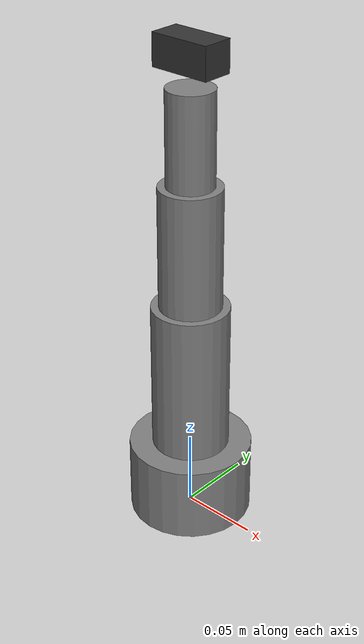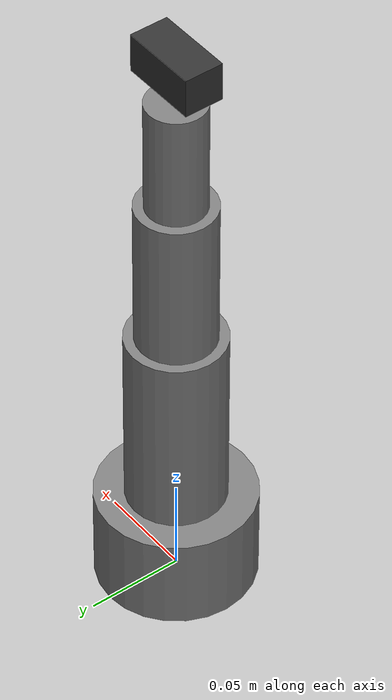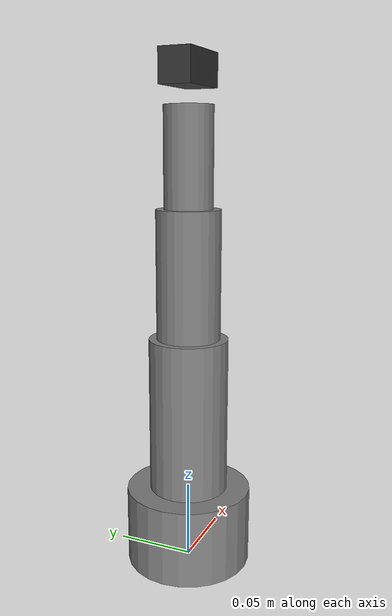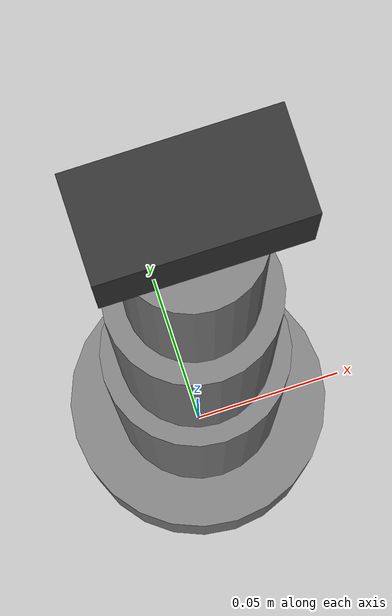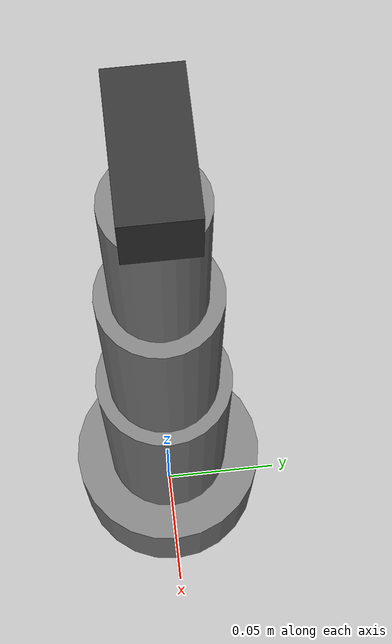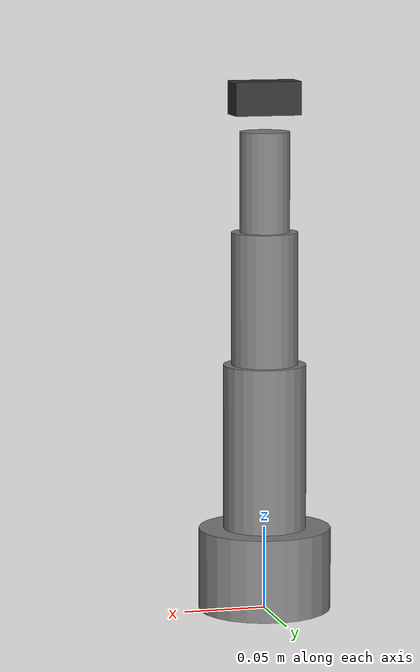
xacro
<?xml version="1.0"?>
<robot name="arm" xmlns:xacro="http://www.ros.org/wiki/xacro">

    <!-- Arm parameters -->
    <xacro:property name="arm_base_height" value="0.05" />
    <xacro:property name="arm_base_radius" value="0.04" />
    <xacro:property name="link1_length" value="0.1" />
    <xacro:property name="link1_radius" value="0.025" />
    <xacro:property name="link2_length" value="0.08" />
    <xacro:property name="link2_radius" value="0.02" />
    <xacro:property name="link3_length" value="0.06" />
    <xacro:property name="link3_radius" value="0.015" />
    <xacro:property name="gripper_length" value="0.04" />
    <xacro:property name="gripper_width" value="0.02" />

    <!-- Materials -->
    <material name="arm_color">
        <color rgba="0.5 0.5 0.5 1.0" />
    </material>
    <material name="joint_color">
        <color rgba="0.2 0.2 0.2 1.0" />
    </material>

<!-- Arm base (mounting point) -->
    <link name="arm_base">
        <visual>
            <geometry>
                <cylinder radius="${arm_base_radius}" length="${arm_base_height}" />
            </geometry>
            <origin xyz="0 0 ${arm_base_height/2}" rpy="0 0 0" />
            <material name="arm_color" />
        </visual>
        <collision>
            <geometry>
                <cylinder radius="${arm_base_radius}" length="${arm_base_height}" />
            </geometry>
            <origin xyz="0 0 ${arm_base_height/2}" rpy="0 0 0" />
        </collision>
        <inertial>
            <mass value="0.5" />
            <origin xyz="0 0 ${arm_base_height/2}" rpy="0 0 0" />
            <inertia ixx="0.001" ixy="0.0" ixz="0.0"
                     iyy="0.001" iyz="0.0"
                     izz="0.001" />
        </inertial>
    </link>

<!-- Joint 1: Base rotation (yaw) -->
    <joint name="arm_joint1" type="revolute">
        <parent link="arm_base" />
        <child link="arm_link1" />
        <origin xyz="0 0 ${arm_base_height}" rpy="0 0 0" />
        <axis xyz="0 0 1" />
        <limit lower="${-pi}" upper="${pi}" effort="10" velocity="1.0" />
        <dynamics damping="0.1" friction="0.1" />
    </joint>

    <link name="arm_link1">
        <visual>
            <geometry>
                <cylinder radius="${link1_radius}" length="${link1_length}" />
            </geometry>
            <origin xyz="0 0 ${link1_length/2}" rpy="0 0 0" />
            <material name="arm_color" />
        </visual>
        <collision>
            <geometry>
                <cylinder radius="${link1_radius}" length="${link1_length}" />
            </geometry>
            <origin xyz="0 0 ${link1_length/2}" rpy="0 0 0" />
        </collision>
        <inertial>
            <mass value="0.3" />
            <origin xyz="0 0 ${link1_length/2}" rpy="0 0 0" />
            <inertia ixx="0.001" ixy="0.0" ixz="0.0"
                     iyy="0.001" iyz="0.0"
                     izz="0.0001" />
        </inertial>
    </link>

<!-- Joint 2: Shoulder pitch -->
    <joint name="arm_joint2" type="revolute">
        <parent link="arm_link1" />
        <child link="arm_link2" />
        <origin xyz="0 0 ${link1_length}" rpy="0 0 0" />
        <axis xyz="0 1 0" />
        <limit lower="${-pi/2}" upper="${pi/2}" effort="10" velocity="1.0" />
        <dynamics damping="0.1" friction="0.1" />
    </joint>

    <link name="arm_link2">
        <visual>
            <geometry>
                <cylinder radius="${link2_radius}" length="${link2_length}" />
            </geometry>
            <origin xyz="0 0 ${link2_length/2}" rpy="0 0 0" />
            <material name="arm_color" />
        </visual>
        <collision>
            <geometry>
                <cylinder radius="${link2_radius}" length="${link2_length}" />
            </geometry>
            <origin xyz="0 0 ${link2_length/2}" rpy="0 0 0" />
        </collision>
        <inertial>
            <mass value="0.2" />
            <origin xyz="0 0 ${link2_length/2}" rpy="0 0 0" />
            <inertia ixx="0.0005" ixy="0.0" ixz="0.0"
                     iyy="0.0005" iyz="0.0"
                     izz="0.0001" />
        </inertial>
    </link>

<!-- Joint 3: Elbow pitch -->
    <joint name="arm_joint3" type="revolute">
        <parent link="arm_link2" />
        <child link="arm_link3" />
        <origin xyz="0 0 ${link2_length}" rpy="0 0 0" />
        <axis xyz="0 1 0" />
        <limit lower="${-pi/2}" upper="${pi/2}" effort="5" velocity="1.0" />
        <dynamics damping="0.1" friction="0.1" />
    </joint>

    <link name="arm_link3">
        <visual>
            <geometry>
                <cylinder radius="${link3_radius}" length="${link3_length}" />
            </geometry>
            <origin xyz="0 0 ${link3_length/2}" rpy="0 0 0" />
            <material name="arm_color" />
        </visual>
        <collision>
            <geometry>
                <cylinder radius="${link3_radius}" length="${link3_length}" />
            </geometry>
            <origin xyz="0 0 ${link3_length/2}" rpy="0 0 0" />
        </collision>
        <inertial>
            <mass value="0.1" />
            <origin xyz="0 0 ${link3_length/2}" rpy="0 0 0" />
            <inertia ixx="0.0002" ixy="0.0" ixz="0.0"
                     iyy="0.0002" iyz="0.0"
                     izz="0.00005" />
        </inertial>
    </link>

<!-- Joint 4: Wrist rotation -->
    <joint name="arm_joint4" type="revolute">
        <parent link="arm_link3" />
        <child link="arm_end_effector" />
        <origin xyz="0 0 ${link3_length}" rpy="0 0 0" />
        <axis xyz="0 0 1" />
        <limit lower="${-pi}" upper="${pi}" effort="2" velocity="1.5" />
        <dynamics damping="0.1" friction="0.1" />
    </joint>

    <link name="arm_end_effector">
        <visual>
            <geometry>
                <box size="${gripper_length} ${gripper_width} ${gripper_width}" />
            </geometry>
            <origin xyz="0 0 ${gripper_length/2}" rpy="0 0 0" />
            <material name="joint_color" />
        </visual>
        <collision>
            <geometry>
                <box size="${gripper_length} ${gripper_width} ${gripper_width}" />
            </geometry>
            <origin xyz="0 0 ${gripper_length/2}" rpy="0 0 0" />
        </collision>
        <inertial>
            <mass value="0.05" />
            <origin xyz="0 0 ${gripper_length/2}" rpy="0 0 0" />
            <inertia ixx="0.00001" ixy="0.0" ixz="0.0"
                     iyy="0.00001" iyz="0.0"
                     izz="0.00001" />
        </inertial>
    </link>

    <!-- Gazebo properties -->
    <gazebo reference="arm_base">
        <material>Gazebo/Grey</material>
    </gazebo>
    <gazebo reference="arm_link1">
        <material>Gazebo/Grey</material>
    </gazebo>
    <gazebo reference="arm_link2">
        <material>Gazebo/Grey</material>
    </gazebo>
    <gazebo reference="arm_link3">
        <material>Gazebo/Grey</material>
    </gazebo>
    <gazebo reference="arm_end_effector">
        <material>Gazebo/DarkGrey</material>
    </gazebo>

    <!-- Macro to attach arm to parent link -->
    <xacro:macro name="attach_arm" params="parent xyz rpy">
        <joint name="arm_mount_joint" type="fixed">
            <parent link="${parent}" />
            <child link="arm_base" />
            <origin xyz="${xyz}" rpy="${rpy}" />
        </joint>
    </xacro:macro>

</robot>
